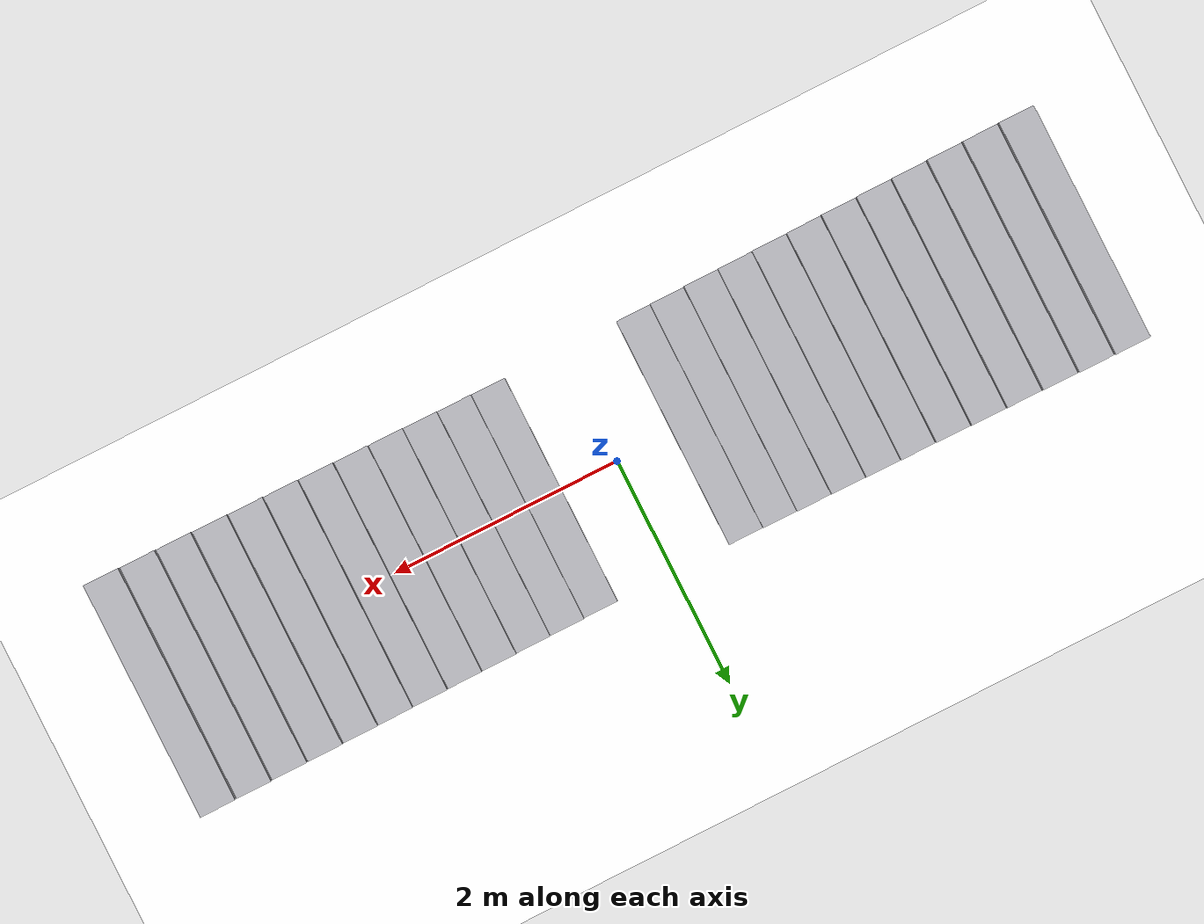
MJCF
<mujoco model="stairs">

    <statistic center="0 0 1" extent="1.8" meansize="0.04"/>
    <visual>
        <headlight ambient=".4 .4 .4" diffuse=".8 .8 .8" specular="1 1 1"/>
        <rgba force="1 0 0 1"/>
        <global azimuth="160" elevation="-20"/>
        <map force="0.01"/>
        <scale contactheight="0.2" contactwidth="0.5" forcewidth="0.3"/>
        <quality shadowsize="8192"/>
    </visual>
    <asset>
        <texture builtin="gradient" height="800" rgb1="0.45 0.59 0.79" rgb2="0.30 0.41 0.60" type="skybox" width="800"/>
        <texture builtin="checker" height="300" mark="edge" markrgb="0 0 0" name="groundplane" rgb1="1 1 1" rgb2="1 1 1" type="2d" width="300"/>
        <material name="groundplane" reflectance="0" texrepeat="5 5" texture="groundplane" texuniform="true"/>
    </asset>
    <worldbody>
        <geom conaffinity="0" contype="1" material="groundplane" name="floor" size="0 0 0.01" type="plane"/>

        <geom name="step_front_0"  type="box" size="0.15 1.0 0.085" pos="0.65 0 0.085" rgba="0.7 0.7 0.72 1" contype="1" conaffinity="0"/>
        <geom name="step_front_1"  type="box" size="0.15 1.0 0.170" pos="0.95 0 0.170" rgba="0.7 0.7 0.72 1" contype="1" conaffinity="0"/>
        <geom name="step_front_2"  type="box" size="0.15 1.0 0.255" pos="1.25 0 0.255" rgba="0.7 0.7 0.72 1" contype="1" conaffinity="0"/>
        <geom name="step_front_3"  type="box" size="0.15 1.0 0.340" pos="1.55 0 0.340" rgba="0.7 0.7 0.72 1" contype="1" conaffinity="0"/>
        <geom name="step_front_4"  type="box" size="0.15 1.0 0.425" pos="1.85 0 0.425" rgba="0.7 0.7 0.72 1" contype="1" conaffinity="0"/>
        <geom name="step_front_5"  type="box" size="0.15 1.0 0.510" pos="2.15 0 0.510" rgba="0.7 0.7 0.72 1" contype="1" conaffinity="0"/>
        <geom name="step_front_6"  type="box" size="0.15 1.0 0.595" pos="2.45 0 0.595" rgba="0.7 0.7 0.72 1" contype="1" conaffinity="0"/>
        <geom name="step_front_7"  type="box" size="0.15 1.0 0.680" pos="2.75 0 0.680" rgba="0.7 0.7 0.72 1" contype="1" conaffinity="0"/>
        <geom name="step_front_8"  type="box" size="0.15 1.0 0.765" pos="3.05 0 0.765" rgba="0.7 0.7 0.72 1" contype="1" conaffinity="0"/>
        <geom name="step_front_9"  type="box" size="0.15 1.0 0.850" pos="3.35 0 0.850" rgba="0.7 0.7 0.72 1" contype="1" conaffinity="0"/>
        <geom name="step_front_10" type="box" size="0.15 1.0 0.935" pos="3.65 0 0.935" rgba="0.7 0.7 0.72 1" contype="1" conaffinity="0"/>
        <geom name="step_front_11" type="box" size="0.15 1.0 1.020" pos="3.95 0 1.020" rgba="0.7 0.7 0.72 1" contype="1" conaffinity="0"/>

        <geom name="step_back_0"  type="box" size="0.15 1.0 0.085" pos="-0.65 0 0.085" rgba="0.7 0.7 0.72 1" contype="1" conaffinity="0"/>
        <geom name="step_back_1"  type="box" size="0.15 1.0 0.170" pos="-0.95 0 0.170" rgba="0.7 0.7 0.72 1" contype="1" conaffinity="0"/>
        <geom name="step_back_2"  type="box" size="0.15 1.0 0.255" pos="-1.25 0 0.255" rgba="0.7 0.7 0.72 1" contype="1" conaffinity="0"/>
        <geom name="step_back_3"  type="box" size="0.15 1.0 0.340" pos="-1.55 0 0.340" rgba="0.7 0.7 0.72 1" contype="1" conaffinity="0"/>
        <geom name="step_back_4"  type="box" size="0.15 1.0 0.425" pos="-1.85 0 0.425" rgba="0.7 0.7 0.72 1" contype="1" conaffinity="0"/>
        <geom name="step_back_5"  type="box" size="0.15 1.0 0.510" pos="-2.15 0 0.510" rgba="0.7 0.7 0.72 1" contype="1" conaffinity="0"/>
        <geom name="step_back_6"  type="box" size="0.15 1.0 0.595" pos="-2.45 0 0.595" rgba="0.7 0.7 0.72 1" contype="1" conaffinity="0"/>
        <geom name="step_back_7"  type="box" size="0.15 1.0 0.680" pos="-2.75 0 0.680" rgba="0.7 0.7 0.72 1" contype="1" conaffinity="0"/>
        <geom name="step_back_8"  type="box" size="0.15 1.0 0.765" pos="-3.05 0 0.765" rgba="0.7 0.7 0.72 1" contype="1" conaffinity="0"/>
        <geom name="step_back_9"  type="box" size="0.15 1.0 0.850" pos="-3.35 0 0.850" rgba="0.7 0.7 0.72 1" contype="1" conaffinity="0"/>
        <geom name="step_back_10" type="box" size="0.15 1.0 0.935" pos="-3.65 0 0.935" rgba="0.7 0.7 0.72 1" contype="1" conaffinity="0"/>
        <geom name="step_back_11" type="box" size="0.15 1.0 1.020" pos="-3.95 0 1.020" rgba="0.7 0.7 0.72 1" contype="1" conaffinity="0"/>
    </worldbody>

</mujoco>
